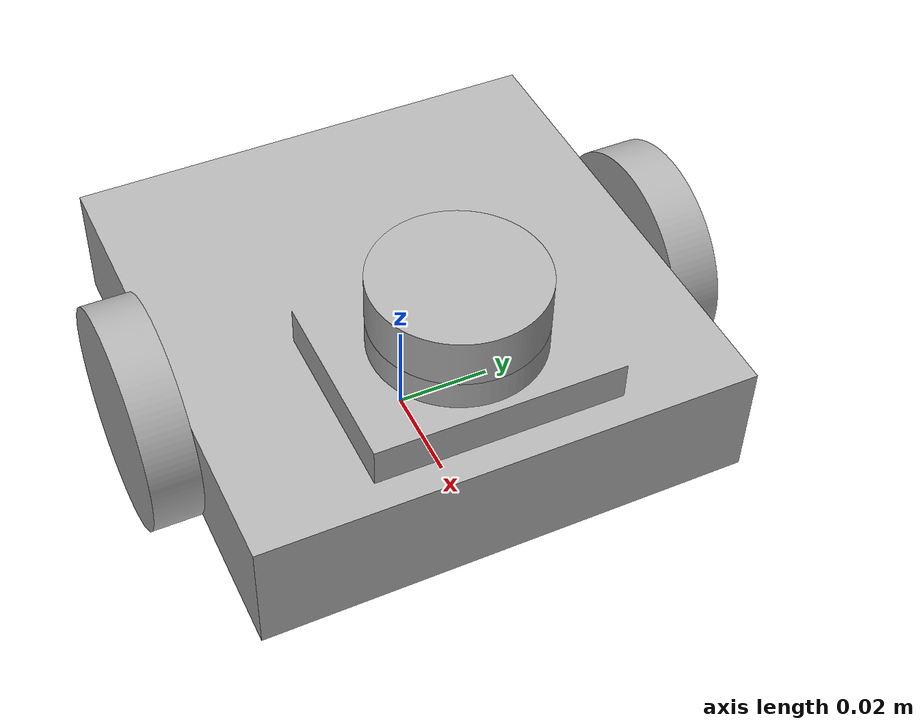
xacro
<?xml version="1.0" ?>
<robot name="mobile_robot_final" xmlns:xacro="http://www.ros.org/wiki/xacro">

<xacro:include filename="$(find mobile_robot_final_description)/urdf/materials.xacro" />
<xacro:include filename="$(find mobile_robot_final_description)/urdf/mobile_robot_final.trans" />
<xacro:include filename="$(find mobile_robot_final_description)/urdf/mobile_robot_final.gazebo" />
<link name="base_link">
  <inertial>
    <origin xyz="0.0018980536553154037 0.0 0.023812309306618297" rpy="0 0 0"/>
    <mass value="0.2882739103934156"/>
    <inertia ixx="0.000246" iyy="0.000259" izz="0.000462" ixy="-0.0" iyz="-0.0" ixz="-9e-06"/>
  </inertial>
  <visual>
    <origin xyz="0 0 0" rpy="0 0 0"/>
    <geometry>
      <mesh filename="package://mobile_robot_final_description/meshes/base_link.stl" scale="0.001 0.001 0.001"/>
    </geometry>
    <material name="silver"/>
  </visual>
  <collision>
    <origin xyz="0 0 0" rpy="0 0 0"/>
    <geometry>
      <mesh filename="package://mobile_robot_final_description/meshes/base_link.stl" scale="0.001 0.001 0.001"/>
    </geometry>
  </collision>
</link>

<link name="right_wheel_1">
  <inertial>
    <origin xyz="0.0 -0.0050000000000000044 1.862645142292063e-10" rpy="0 0 0"/>
    <mass value="0.014791010912182443"/>
    <inertia ixx="2e-06" iyy="4e-06" izz="2e-06" ixy="-0.0" iyz="0.0" ixz="-0.0"/>
  </inertial>
  <visual>
    <origin xyz="-0.0 0.05 -0.0225" rpy="0 0 0"/>
    <geometry>
      <mesh filename="package://mobile_robot_final_description/meshes/right_wheel_1.stl" scale="0.001 0.001 0.001"/>
    </geometry>
    <material name="silver"/>
  </visual>
  <collision>
    <origin xyz="-0.0 0.05 -0.0225" rpy="0 0 0"/>
    <geometry>
      <mesh filename="package://mobile_robot_final_description/meshes/right_wheel_1.stl" scale="0.001 0.001 0.001"/>
    </geometry>
  </collision>
</link>

<link name="left_wheel_1">
  <inertial>
    <origin xyz="0.0 0.0049999999999999975 1.8626452116810022e-10" rpy="0 0 0"/>
    <mass value="0.014791010912182437"/>
    <inertia ixx="2e-06" iyy="4e-06" izz="2e-06" ixy="0.0" iyz="0.0" ixz="0.0"/>
  </inertial>
  <visual>
    <origin xyz="-0.0 -0.05 -0.0225" rpy="0 0 0"/>
    <geometry>
      <mesh filename="package://mobile_robot_final_description/meshes/left_wheel_1.stl" scale="0.001 0.001 0.001"/>
    </geometry>
    <material name="silver"/>
  </visual>
  <collision>
    <origin xyz="-0.0 -0.05 -0.0225" rpy="0 0 0"/>
    <geometry>
      <mesh filename="package://mobile_robot_final_description/meshes/left_wheel_1.stl" scale="0.001 0.001 0.001"/>
    </geometry>
  </collision>
</link>

<link name="lidar_1">
  <inertial>
    <origin xyz="3.7252902498896567e-10 -1.956511856470959e-18 0.0050000000000000044" rpy="0 0 0"/>
    <mass value="0.009623955221823183"/>
    <inertia ixx="1e-06" iyy="1e-06" izz="1e-06" ixy="-0.0" iyz="-0.0" ixz="-0.0"/>
  </inertial>
  <visual>
    <origin xyz="-0.025 -0.0 -0.049" rpy="0 0 0"/>
    <geometry>
      <mesh filename="package://mobile_robot_final_description/meshes/lidar_1.stl" scale="0.001 0.001 0.001"/>
    </geometry>
    <material name="silver"/>
  </visual>
  <collision>
    <origin xyz="-0.025 -0.0 -0.049" rpy="0 0 0"/>
    <geometry>
      <mesh filename="package://mobile_robot_final_description/meshes/lidar_1.stl" scale="0.001 0.001 0.001"/>
    </geometry>
  </collision>
</link>

<joint name="Revolute 3" type="continuous">
  <origin xyz="0.0 -0.05 0.0225" rpy="0 0 0"/>
  <parent link="base_link"/>
  <child link="right_wheel_1"/>
  <axis xyz="0.0 -1.0 0.0"/>
</joint>

<joint name="Revolute 4" type="continuous">
  <origin xyz="0.0 0.05 0.0225" rpy="0 0 0"/>
  <parent link="base_link"/>
  <child link="left_wheel_1"/>
  <axis xyz="0.0 1.0 0.0"/>
</joint>

<joint name="Rigid 5" type="fixed">
  <origin xyz="0.025 0.0 0.049" rpy="0 0 0"/>
  <parent link="base_link"/>
  <child link="lidar_1"/>
</joint>

</robot>

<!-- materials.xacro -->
<robot name="mobile_robot_final" xmlns:xacro="http://www.ros.org/wiki/xacro" >

<material name="silver">
  <color rgba="0.700 0.700 0.700 1.000"/>
</material>

</robot>

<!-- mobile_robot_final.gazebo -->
<robot name="mobile_robot_final" xmlns:xacro="http://www.ros.org/wiki/xacro" >

<xacro:property name="body_color" value="Gazebo/Silver" />

<gazebo>
  <plugin name="control" filename="libgazebo_ros_control.so"/>
</gazebo>
<gazebo reference="base_link">
  <material>${body_color}</material>
  <mu1>0.2</mu1>
  <mu2>0.2</mu2>
  <selfCollide>true</selfCollide>
  <gravity>true</gravity>
</gazebo>

<gazebo reference="right_wheel_1">
  <material>${body_color}</material>
  <mu1>0.2</mu1>
  <mu2>0.2</mu2>
  <selfCollide>true</selfCollide>
</gazebo>

<gazebo reference="left_wheel_1">
  <material>${body_color}</material>
  <mu1>0.2</mu1>
  <mu2>0.2</mu2>
  <selfCollide>true</selfCollide>
</gazebo>

<gazebo reference="lidar_1">
  <material>${body_color}</material>
  <mu1>0.2</mu1>
  <mu2>0.2</mu2>
  <selfCollide>true</selfCollide>
</gazebo>

</robot>
